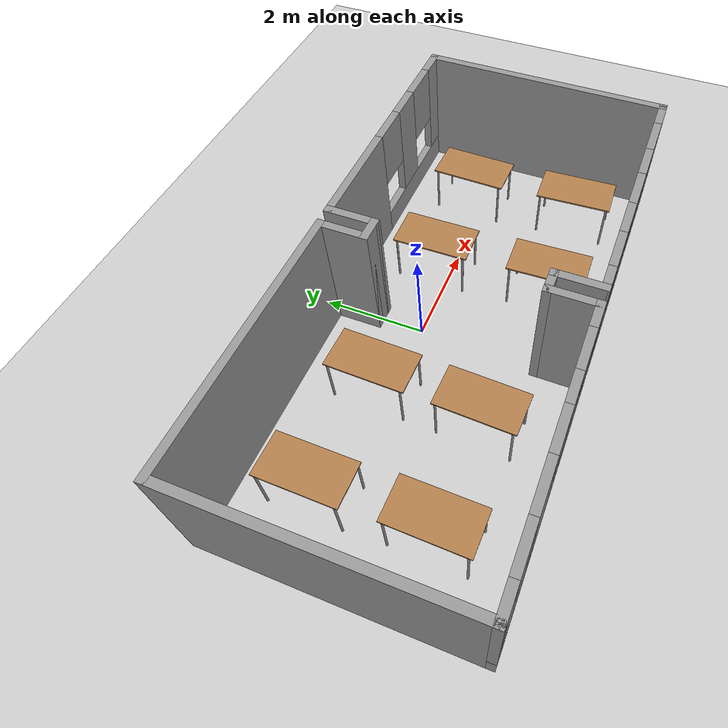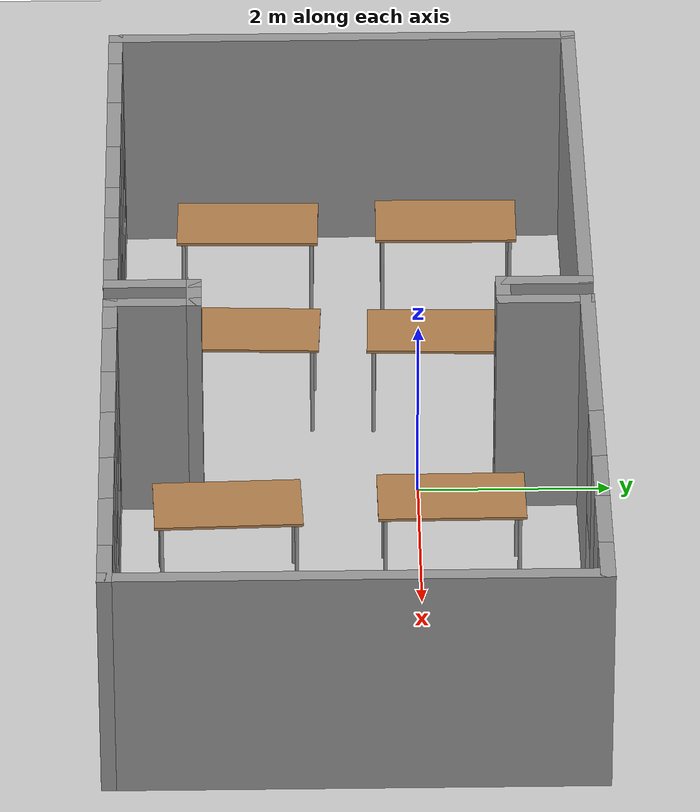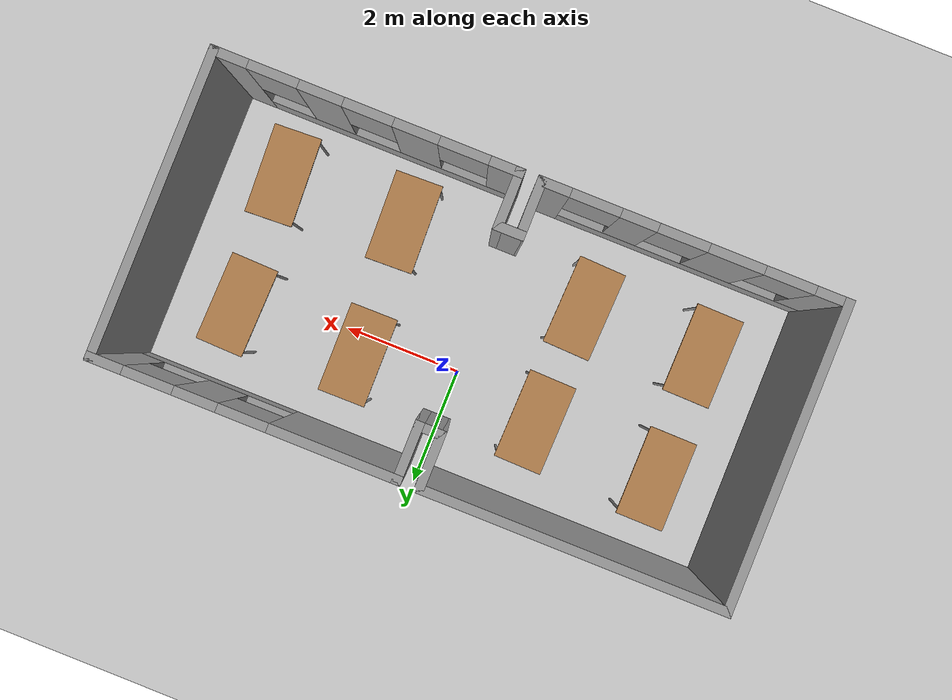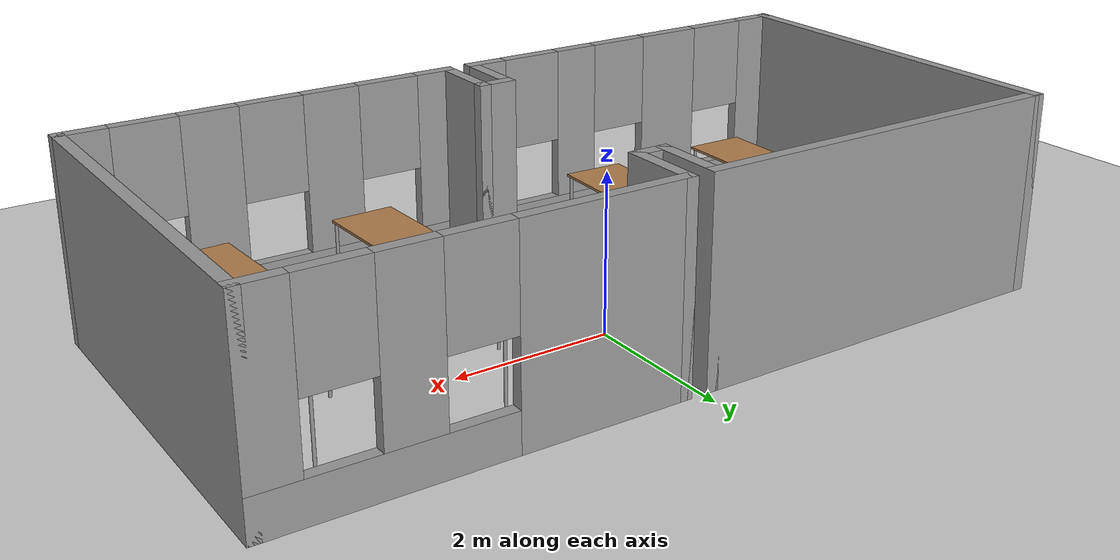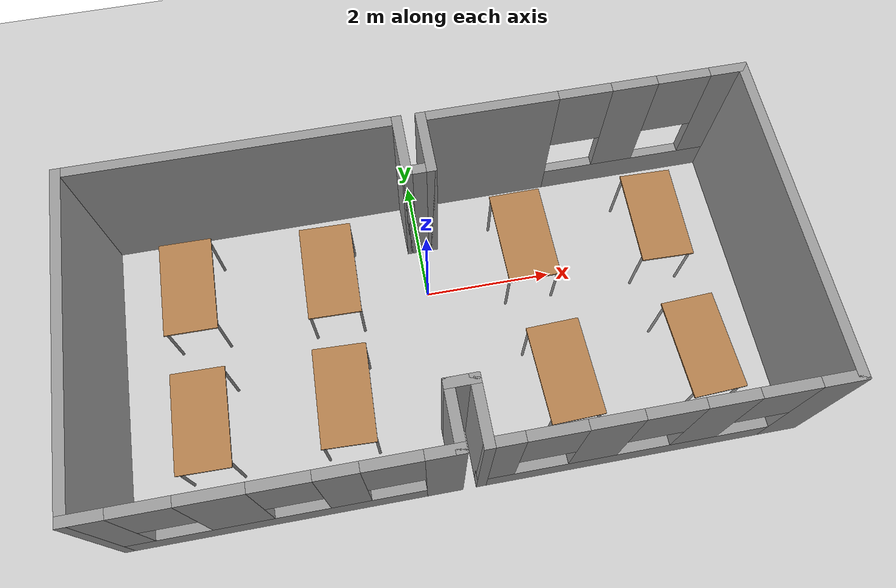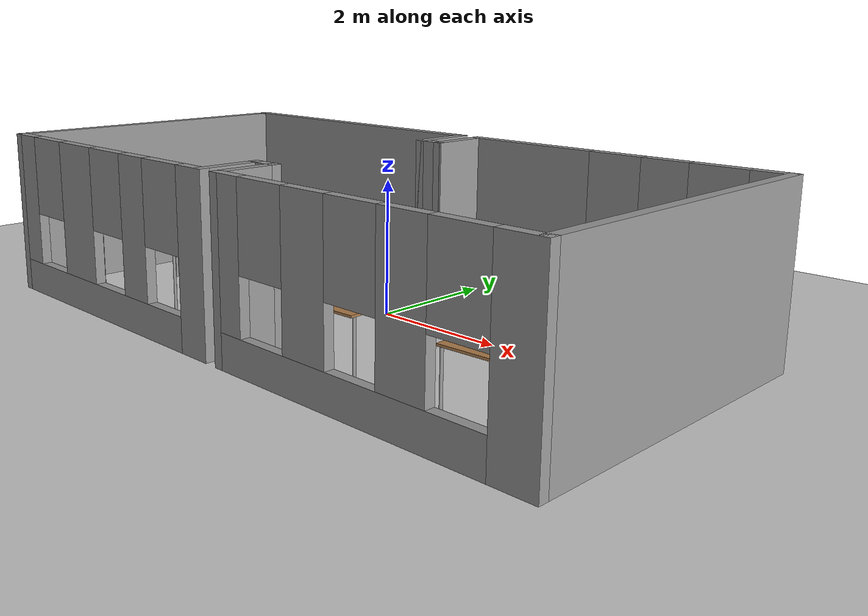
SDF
<sdf version="1.7">
 <world name="default">
  <light name="sun" type="directional">
   <pose>0 0 10 0 -0 0</pose>
   <diffuse>0.8 0.8 0.8 1</diffuse>
   <specular>0.2 0.2 0.2 1</specular>
   <attenuation>
    <range>1000</range>
    <constant>0.9</constant>
    <linear>0.01</linear>
    <quadratic>0.001</quadratic>
   </attenuation>
   <direction>-0.5 0.1 -0.9</direction>
   <spot><inner_angle>0</inner_angle><outer_angle>0</outer_angle><falloff>0</falloff></spot>
  </light>
  <model name="ground_plane">
   <static>1</static>
   <link name="link">
    <collision name="collision">
     <geometry><plane><normal>0 0 1</normal><size>100 100</size></plane></geometry>
     <surface>
      <contact><collide_bitmask>65535</collide_bitmask></contact>
      <friction><ode><mu>100</mu><mu2>50</mu2></ode></friction>
     </surface>
    </collision>
    <visual name="visual">
     <cast_shadows>0</cast_shadows>
     <geometry><plane><normal>0 0 1</normal><size>100 100</size></plane></geometry>
     <material>
      <script><uri>file://media/materials/scripts/gazebo.material</uri><name>Gazebo/Grey</name></script>
     </material>
    </visual>
   </link>
  </model>
  <gravity>0 0 -9.8</gravity>
  <magnetic_field>6e-06 2.3e-05 -4.2e-05</magnetic_field>
  <atmosphere type="adiabatic"/>
  <physics type="ode">
   <max_step_size>0.001</max_step_size>
   <real_time_factor>1</real_time_factor>
   <real_time_update_rate>1000</real_time_update_rate>
  </physics>
  <scene><ambient>0.4 0.4 0.4 1</ambient><background>0.7 0.7 0.7 1</background><shadows>1</shadows></scene>
  <spherical_coordinates>
   <surface_model>EARTH_WGS84</surface_model>
   <latitude_deg>0</latitude_deg>
   <longitude_deg>0</longitude_deg>
   <elevation>0</elevation>
   <heading_deg>0</heading_deg>
  </spherical_coordinates>
  <model name="eds10">
   <pose>0.049415 0.005387 0 0 -0 0</pose>
   <link name="Wall_0">
    <collision name="Wall_0_Collision">
     <geometry><box><size>5 0.15 2.5</size></box></geometry>
     <pose>0 0 1.25 0 -0 0</pose>
    </collision>
    <visual name="Wall_0_Visual">
     <pose>0 0 1.25 0 -0 0</pose>
     <geometry><box><size>5 0.15 2.5</size></box></geometry>
     <material>
      <script><uri>file://media/materials/scripts/gazebo.material</uri><name>Gazebo/Grey</name></script>
      <ambient>1 1 1 1</ambient>
     </material>
     <meta><layer>0</layer></meta>
    </visual>
    <pose>-2.6 1.7075 0 0 -0 0</pose>
   </link>
   <link name="Wall_1">
    <collision name="Wall_1_Collision">
     <geometry><box><size>1 0.15 2.5</size></box></geometry>
     <pose>0 0 1.25 0 -0 0</pose>
    </collision>
    <visual name="Wall_1_Visual">
     <pose>0 0 1.25 0 -0 0</pose>
     <geometry><box><size>1 0.15 2.5</size></box></geometry>
     <material>
      <script><uri>file://media/materials/scripts/gazebo.material</uri><name>Gazebo/Grey</name></script>
      <ambient>1 1 1 1</ambient>
     </material>
     <meta><layer>0</layer></meta>
    </visual>
    <pose>-0.175 1.2825 0 0 -0 -1.5708</pose>
   </link>
   <link name="Wall_10">
    <collision name="Wall_10_Collision">
     <geometry><box><size>1 0.15 2.5</size></box></geometry>
     <pose>0 0 1.25 0 -0 0</pose>
    </collision>
    <visual name="Wall_10_Visual">
     <pose>0 0 1.25 0 -0 0</pose>
     <geometry><box><size>1 0.15 2.5</size></box></geometry>
     <material>
      <script><uri>file://media/materials/scripts/gazebo.material</uri><name>Gazebo/Grey</name></script>
      <ambient>1 1 1 1</ambient>
     </material>
     <meta><layer>0</layer></meta>
    </visual>
    <pose>-0.175 -2.7175 0 0 -0 -1.5708</pose>
   </link>
   <link name="Wall_11">
    <pose>-2.6 -3.1425 0 0 -0 3.14159</pose>
    <visual name="Wall_11_Visual_0">
     <pose>-2.23182 0 1.25 0 -0 0</pose>
     <geometry><box><size>0.536358 0.15 2.5</size></box></geometry>
     <material>
      <script><uri>file://media/materials/scripts/gazebo.material</uri><name>Gazebo/Grey</name></script>
      <ambient>1 1 1 1</ambient>
     </material>
     <meta><layer>0</layer></meta>
    </visual>
    <collision name="Wall_11_Collision_0">
     <geometry><box><size>0.536358 0.15 2.5</size></box></geometry>
     <pose>-2.23182 0 1.25 0 -0 0</pose>
    </collision>
    <visual name="Wall_11_Visual_1">
     <pose>0.268179 0 0.25 0 -0 0</pose>
     <geometry><box><size>4.46364 0.15 0.5</size></box></geometry>
     <material>
      <script><uri>file://media/materials/scripts/gazebo.material</uri><name>Gazebo/Grey</name></script>
      <ambient>1 1 1 1</ambient>
     </material>
     <meta><layer>0</layer></meta>
    </visual>
    <collision name="Wall_11_Collision_1">
     <geometry><box><size>4.46364 0.15 0.5</size></box></geometry>
     <pose>0.268179 0 0.25 0 -0 0</pose>
    </collision>
    <visual name="Wall_11_Visual_2">
     <pose>-0.869724 0 1.5 0 -0 0</pose>
     <geometry><box><size>0.587836 0.15 2</size></box></geometry>
     <material>
      <script><uri>file://media/materials/scripts/gazebo.material</uri><name>Gazebo/Grey</name></script>
      <ambient>1 1 1 1</ambient>
     </material>
     <meta><layer>0</layer></meta>
    </visual>
    <collision name="Wall_11_Collision_2">
     <geometry><box><size>0.587836 0.15 2</size></box></geometry>
     <pose>-0.869724 0 1.5 0 -0 0</pose>
    </collision>
    <visual name="Wall_11_Visual_3">
     <pose>0.66557 0 1.5 0 -0 0</pose>
     <geometry><box><size>0.882752 0.15 2</size></box></geometry>
     <material>
      <script><uri>file://media/materials/scripts/gazebo.material</uri><name>Gazebo/Grey</name></script>
      <ambient>1 1 1 1</ambient>
     </material>
     <meta><layer>0</layer></meta>
    </visual>
    <collision name="Wall_11_Collision_3">
     <geometry><box><size>0.882752 0.15 2</size></box></geometry>
     <pose>0.66557 0 1.5 0 -0 0</pose>
    </collision>
    <visual name="Wall_11_Visual_4">
     <pose>2.20347 0 1.5 0 -0 0</pose>
     <geometry><box><size>0.593054 0.15 2</size></box></geometry>
     <material>
      <script><uri>file://media/materials/scripts/gazebo.material</uri><name>Gazebo/Grey</name></script>
      <ambient>1 1 1 1</ambient>
     </material>
     <meta><layer>0</layer></meta>
    </visual>
    <collision name="Wall_11_Collision_4">
     <geometry><box><size>0.593054 0.15 2</size></box></geometry>
     <pose>2.20347 0 1.5 0 -0 0</pose>
    </collision>
    <visual name="Wall_11_Visual_5">
     <pose>-1.56364 0 1.9 0 -0 0</pose>
     <geometry><box><size>0.8 0.15 1.2</size></box></geometry>
     <material>
      <script><uri>file://media/materials/scripts/gazebo.material</uri><name>Gazebo/Grey</name></script>
      <ambient>1 1 1 1</ambient>
     </material>
     <meta><layer>0</layer></meta>
    </visual>
    <collision name="Wall_11_Collision_5">
     <geometry><box><size>0.8 0.15 1.2</size></box></geometry>
     <pose>-1.56364 0 1.9 0 -0 0</pose>
    </collision>
    <visual name="Wall_11_Visual_6">
     <pose>-0.175806 0 1.9 0 -0 0</pose>
     <geometry><box><size>0.8 0.15 1.2</size></box></geometry>
     <material>
      <script><uri>file://media/materials/scripts/gazebo.material</uri><name>Gazebo/Grey</name></script>
      <ambient>1 1 1 1</ambient>
     </material>
     <meta><layer>0</layer></meta>
    </visual>
    <collision name="Wall_11_Collision_6">
     <geometry><box><size>0.8 0.15 1.2</size></box></geometry>
     <pose>-0.175806 0 1.9 0 -0 0</pose>
    </collision>
    <visual name="Wall_11_Visual_7">
     <pose>1.50695 0 1.9 0 -0 0</pose>
     <geometry><box><size>0.8 0.15 1.2</size></box></geometry>
     <material>
      <script><uri>file://media/materials/scripts/gazebo.material</uri><name>Gazebo/Grey</name></script>
      <ambient>1 1 1 1</ambient>
     </material>
     <meta><layer>0</layer></meta>
    </visual>
    <collision name="Wall_11_Collision_7">
     <geometry><box><size>0.8 0.15 1.2</size></box></geometry>
     <pose>1.50695 0 1.9 0 -0 0</pose>
    </collision>
   </link>
   <link name="Wall_12">
    <collision name="Wall_12_Collision">
     <geometry><box><size>5 0.15 2.5</size></box></geometry>
     <pose>0 0 1.25 0 -0 0</pose>
    </collision>
    <visual name="Wall_12_Visual">
     <pose>0 0 1.25 0 -0 0</pose>
     <geometry><box><size>5 0.15 2.5</size></box></geometry>
     <material>
      <script><uri>file://media/materials/scripts/gazebo.material</uri><name>Gazebo/Grey</name></script>
      <ambient>1 1 1 1</ambient>
     </material>
     <meta><layer>0</layer></meta>
    </visual>
    <pose>-5.025 -0.7175 0 0 -0 1.5708</pose>
   </link>
   <link name="Wall_2">
    <collision name="Wall_2_Collision">
     <geometry><box><size>0.5 0.15 2.5</size></box></geometry>
     <pose>0 0 1.25 0 -0 0</pose>
    </collision>
    <visual name="Wall_2_Visual">
     <pose>0 0 1.25 0 -0 0</pose>
     <geometry><box><size>0.5 0.15 2.5</size></box></geometry>
     <material>
      <script><uri>file://media/materials/scripts/gazebo.material</uri><name>Gazebo/Grey</name></script>
      <ambient>1 1 1 1</ambient>
     </material>
     <meta><layer>0</layer></meta>
    </visual>
    <pose>0 0.8575 0 0 -0 0</pose>
   </link>
   <link name="Wall_3">
    <collision name="Wall_3_Collision">
     <geometry><box><size>1 0.15 2.5</size></box></geometry>
     <pose>0 0 1.25 0 -0 0</pose>
    </collision>
    <visual name="Wall_3_Visual">
     <pose>0 0 1.25 0 -0 0</pose>
     <geometry><box><size>1 0.15 2.5</size></box></geometry>
     <material>
      <script><uri>file://media/materials/scripts/gazebo.material</uri><name>Gazebo/Grey</name></script>
      <ambient>1 1 1 1</ambient>
     </material>
     <meta><layer>0</layer></meta>
    </visual>
    <pose>0.175 1.2825 0 0 -0 1.5708</pose>
   </link>
   <link name="Wall_4">
    <pose>2.6 1.7075 0 0 -0 0</pose>
    <visual name="Wall_4_Visual_0">
     <pose>-1.43797 0 1.25 0 -0 0</pose>
     <geometry><box><size>2.12406 0.15 2.5</size></box></geometry>
     <material>
      <script><uri>file://media/materials/scripts/gazebo.material</uri><name>Gazebo/Grey</name></script>
      <ambient>1 1 1 1</ambient>
     </material>
     <meta><layer>0</layer></meta>
    </visual>
    <collision name="Wall_4_Collision_0">
     <geometry><box><size>2.12406 0.15 2.5</size></box></geometry>
     <pose>-1.43797 0 1.25 0 -0 0</pose>
    </collision>
    <visual name="Wall_4_Visual_1">
     <pose>1.06203 0 0.25 0 -0 0</pose>
     <geometry><box><size>2.87594 0.15 0.5</size></box></geometry>
     <material>
      <script><uri>file://media/materials/scripts/gazebo.material</uri><name>Gazebo/Grey</name></script>
      <ambient>1 1 1 1</ambient>
     </material>
     <meta><layer>0</layer></meta>
    </visual>
    <collision name="Wall_4_Collision_1">
     <geometry><box><size>2.87594 0.15 0.5</size></box></geometry>
     <pose>1.06203 0 0.25 0 -0 0</pose>
    </collision>
    <visual name="Wall_4_Visual_2">
     <pose>0.770023 0 1.5 0 -0 0</pose>
     <geometry><box><size>0.691924 0.15 2</size></box></geometry>
     <material>
      <script><uri>file://media/materials/scripts/gazebo.material</uri><name>Gazebo/Grey</name></script>
      <ambient>1 1 1 1</ambient>
     </material>
     <meta><layer>0</layer></meta>
    </visual>
    <collision name="Wall_4_Collision_2">
     <geometry><box><size>0.691924 0.15 2</size></box></geometry>
     <pose>0.770023 0 1.5 0 -0 0</pose>
    </collision>
    <visual name="Wall_4_Visual_3">
     <pose>2.20799 0 1.5 0 -0 0</pose>
     <geometry><box><size>0.584015 0.15 2</size></box></geometry>
     <material>
      <script><uri>file://media/materials/scripts/gazebo.material</uri><name>Gazebo/Grey</name></script>
      <ambient>1 1 1 1</ambient>
     </material>
     <meta><layer>0</layer></meta>
    </visual>
    <collision name="Wall_4_Collision_3">
     <geometry><box><size>0.584015 0.15 2</size></box></geometry>
     <pose>2.20799 0 1.5 0 -0 0</pose>
    </collision>
    <visual name="Wall_4_Visual_4">
     <pose>0.024061 0 1.9 0 -0 0</pose>
     <geometry><box><size>0.8 0.15 1.2</size></box></geometry>
     <material>
      <script><uri>file://media/materials/scripts/gazebo.material</uri><name>Gazebo/Grey</name></script>
      <ambient>1 1 1 1</ambient>
     </material>
     <meta><layer>0</layer></meta>
    </visual>
    <collision name="Wall_4_Collision_4">
     <geometry><box><size>0.8 0.15 1.2</size></box></geometry>
     <pose>0.024061 0 1.9 0 -0 0</pose>
    </collision>
    <visual name="Wall_4_Visual_5">
     <pose>1.51598 0 1.9 0 -0 0</pose>
     <geometry><box><size>0.8 0.15 1.2</size></box></geometry>
     <material>
      <script><uri>file://media/materials/scripts/gazebo.material</uri><name>Gazebo/Grey</name></script>
      <ambient>1 1 1 1</ambient>
     </material>
     <meta><layer>0</layer></meta>
    </visual>
    <collision name="Wall_4_Collision_5">
     <geometry><box><size>0.8 0.15 1.2</size></box></geometry>
     <pose>1.51598 0 1.9 0 -0 0</pose>
    </collision>
   </link>
   <link name="Wall_6">
    <collision name="Wall_6_Collision">
     <geometry><box><size>5 0.15 2.5</size></box></geometry>
     <pose>0 0 1.25 0 -0 0</pose>
    </collision>
    <visual name="Wall_6_Visual">
     <pose>0 0 1.25 0 -0 0</pose>
     <geometry><box><size>5 0.15 2.5</size></box></geometry>
     <material>
      <script><uri>file://media/materials/scripts/gazebo.material</uri><name>Gazebo/Grey</name></script>
      <ambient>1 1 1 1</ambient>
     </material>
     <meta><layer>0</layer></meta>
    </visual>
    <pose>5.025 -0.7175 0 0 -0 -1.5708</pose>
   </link>
   <link name="Wall_7">
    <pose>2.6 -3.1425 0 0 -0 3.14159</pose>
    <visual name="Wall_7_Visual_0">
     <pose>-2.19064 0 1.25 0 -0 0</pose>
     <geometry><box><size>0.618711 0.15 2.5</size></box></geometry>
     <material>
      <script><uri>file://media/materials/scripts/gazebo.material</uri><name>Gazebo/Grey</name></script>
      <ambient>1 1 1 1</ambient>
     </material>
     <meta><layer>0</layer></meta>
    </visual>
    <collision name="Wall_7_Collision_0">
     <geometry><box><size>0.618711 0.15 2.5</size></box></geometry>
     <pose>-2.19064 0 1.25 0 -0 0</pose>
    </collision>
    <visual name="Wall_7_Visual_1">
     <pose>0.309356 0 0.25 0 -0 0</pose>
     <geometry><box><size>4.38129 0.15 0.5</size></box></geometry>
     <material>
      <script><uri>file://media/materials/scripts/gazebo.material</uri><name>Gazebo/Grey</name></script>
      <ambient>1 1 1 1</ambient>
     </material>
     <meta><layer>0</layer></meta>
    </visual>
    <collision name="Wall_7_Collision_1">
     <geometry><box><size>4.38129 0.15 0.5</size></box></geometry>
     <pose>0.309356 0 0.25 0 -0 0</pose>
    </collision>
    <visual name="Wall_7_Visual_2">
     <pose>-0.726653 0 1.5 0 -0 0</pose>
     <geometry><box><size>0.709272 0.15 2</size></box></geometry>
     <material>
      <script><uri>file://media/materials/scripts/gazebo.material</uri><name>Gazebo/Grey</name></script>
      <ambient>1 1 1 1</ambient>
     </material>
     <meta><layer>0</layer></meta>
    </visual>
    <collision name="Wall_7_Collision_2">
     <geometry><box><size>0.709272 0.15 2</size></box></geometry>
     <pose>-0.726653 0 1.5 0 -0 0</pose>
    </collision>
    <visual name="Wall_7_Visual_3">
     <pose>0.791293 0 1.5 0 -0 0</pose>
     <geometry><box><size>0.72662 0.15 2</size></box></geometry>
     <material>
      <script><uri>file://media/materials/scripts/gazebo.material</uri><name>Gazebo/Grey</name></script>
      <ambient>1 1 1 1</ambient>
     </material>
     <meta><layer>0</layer></meta>
    </visual>
    <collision name="Wall_7_Collision_3">
     <geometry><box><size>0.72662 0.15 2</size></box></geometry>
     <pose>0.791293 0 1.5 0 -0 0</pose>
    </collision>
    <visual name="Wall_7_Visual_4">
     <pose>2.2273 0 1.5 0 -0 0</pose>
     <geometry><box><size>0.545397 0.15 2</size></box></geometry>
     <material>
      <script><uri>file://media/materials/scripts/gazebo.material</uri><name>Gazebo/Grey</name></script>
      <ambient>1 1 1 1</ambient>
     </material>
     <meta><layer>0</layer></meta>
    </visual>
    <collision name="Wall_7_Collision_4">
     <geometry><box><size>0.545397 0.15 2</size></box></geometry>
     <pose>2.2273 0 1.5 0 -0 0</pose>
    </collision>
    <visual name="Wall_7_Visual_5">
     <pose>-1.48129 0 1.9 0 -0 0</pose>
     <geometry><box><size>0.8 0.15 1.2</size></box></geometry>
     <material>
      <script><uri>file://media/materials/scripts/gazebo.material</uri><name>Gazebo/Grey</name></script>
      <ambient>1 1 1 1</ambient>
     </material>
     <meta><layer>0</layer></meta>
    </visual>
    <collision name="Wall_7_Collision_5">
     <geometry><box><size>0.8 0.15 1.2</size></box></geometry>
     <pose>-1.48129 0 1.9 0 -0 0</pose>
    </collision>
    <visual name="Wall_7_Visual_6">
     <pose>0.027983 0 1.9 0 -0 0</pose>
     <geometry><box><size>0.8 0.15 1.2</size></box></geometry>
     <material>
      <script><uri>file://media/materials/scripts/gazebo.material</uri><name>Gazebo/Grey</name></script>
      <ambient>1 1 1 1</ambient>
     </material>
     <meta><layer>0</layer></meta>
    </visual>
    <collision name="Wall_7_Collision_6">
     <geometry><box><size>0.8 0.15 1.2</size></box></geometry>
     <pose>0.027983 0 1.9 0 -0 0</pose>
    </collision>
    <visual name="Wall_7_Visual_7">
     <pose>1.5546 0 1.9 0 -0 0</pose>
     <geometry><box><size>0.8 0.15 1.2</size></box></geometry>
     <material>
      <script><uri>file://media/materials/scripts/gazebo.material</uri><name>Gazebo/Grey</name></script>
      <ambient>1 1 1 1</ambient>
     </material>
     <meta><layer>0</layer></meta>
    </visual>
    <collision name="Wall_7_Collision_7">
     <geometry><box><size>0.8 0.15 1.2</size></box></geometry>
     <pose>1.5546 0 1.9 0 -0 0</pose>
    </collision>
   </link>
   <link name="Wall_8">
    <collision name="Wall_8_Collision">
     <geometry><box><size>1 0.15 2.5</size></box></geometry>
     <pose>0 0 1.25 0 -0 0</pose>
    </collision>
    <visual name="Wall_8_Visual">
     <pose>0 0 1.25 0 -0 0</pose>
     <geometry><box><size>1 0.15 2.5</size></box></geometry>
     <material>
      <script><uri>file://media/materials/scripts/gazebo.material</uri><name>Gazebo/Grey</name></script>
      <ambient>1 1 1 1</ambient>
     </material>
     <meta><layer>0</layer></meta>
    </visual>
    <pose>0.175 -2.7175 0 0 -0 1.5708</pose>
   </link>
   <link name="Wall_9">
    <collision name="Wall_9_Collision">
     <geometry><box><size>0.5 0.15 2.5</size></box></geometry>
     <pose>0 0 1.25 0 -0 0</pose>
    </collision>
    <visual name="Wall_9_Visual">
     <pose>0 0 1.25 0 -0 0</pose>
     <geometry><box><size>0.5 0.15 2.5</size></box></geometry>
     <material>
      <script><uri>file://media/materials/scripts/gazebo.material</uri><name>Gazebo/Grey</name></script>
      <ambient>1 1 1 1</ambient>
     </material>
     <meta><layer>0</layer></meta>
    </visual>
    <pose>0 -2.2925 0 0 -0 3.14159</pose>
   </link>
   <static>1</static>
  </model>
  <model name="table">
   <static>1</static>
   <link name="link">
    <collision name="surface">
     <pose>0 0 1 0 -0 0</pose>
     <geometry><box><size>1.5 0.8 0.03</size></box></geometry>
     <surface><friction><ode><mu>0.6</mu><mu2>0.6</mu2></ode></friction></surface>
    </collision>
    <visual name="visual1">
     <pose>0 0 1 0 -0 0</pose>
     <geometry><box><size>1.5 0.8 0.03</size></box></geometry>
     <material>
      <script><uri>file://media/materials/scripts/gazebo.material</uri><name>Gazebo/Wood</name></script>
     </material>
    </visual>
    <collision name="front_left_leg">
     <pose>0.68 0.38 0.5 0 -0 0</pose>
     <geometry><cylinder><radius>0.02</radius><length>1</length></cylinder></geometry>
    </collision>
    <visual name="front_left_leg">
     <pose>0.68 0.38 0.5 0 -0 0</pose>
     <geometry><cylinder><radius>0.02</radius><length>1</length></cylinder></geometry>
     <material>
      <script><uri>file://media/materials/scripts/gazebo.material</uri><name>Gazebo/Grey</name></script>
     </material>
    </visual>
    <collision name="front_right_leg">
     <pose>0.68 -0.38 0.5 0 -0 0</pose>
     <geometry><cylinder><radius>0.02</radius><length>1</length></cylinder></geometry>
    </collision>
    <visual name="front_right_leg">
     <pose>0.68 -0.38 0.5 0 -0 0</pose>
     <geometry><cylinder><radius>0.02</radius><length>1</length></cylinder></geometry>
     <material>
      <script><uri>file://media/materials/scripts/gazebo.material</uri><name>Gazebo/Grey</name></script>
     </material>
    </visual>
    <collision name="back_right_leg">
     <pose>-0.68 -0.38 0.5 0 -0 0</pose>
     <geometry><cylinder><radius>0.02</radius><length>1</length></cylinder></geometry>
    </collision>
    <visual name="back_right_leg">
     <pose>-0.68 -0.38 0.5 0 -0 0</pose>
     <geometry><cylinder><radius>0.02</radius><length>1</length></cylinder></geometry>
     <material>
      <script><uri>file://media/materials/scripts/gazebo.material</uri><name>Gazebo/Grey</name></script>
     </material>
    </visual>
    <collision name="back_left_leg">
     <pose>-0.68 0.38 0.5 0 -0 0</pose>
     <geometry><cylinder><radius>0.02</radius><length>1</length></cylinder></geometry>
    </collision>
    <visual name="back_left_leg">
     <pose>-0.68 0.38 0.5 0 -0 0</pose>
     <geometry><cylinder><radius>0.02</radius><length>1</length></cylinder></geometry>
     <material>
      <script><uri>file://media/materials/scripts/gazebo.material</uri><name>Gazebo/Grey</name></script>
     </material>
    </visual>
   </link>
   <pose>-1.47283 0.25139 0 0 0 -1.59335</pose>
  </model>
  <model name="table_0">
   <static>1</static>
   <link name="link">
    <collision name="surface">
     <pose>0 0 1 0 -0 0</pose>
     <geometry><box><size>1.5 0.8 0.03</size></box></geometry>
     <surface><friction><ode><mu>0.6</mu><mu2>0.6</mu2></ode></friction></surface>
    </collision>
    <visual name="visual1">
     <pose>0 0 1 0 -0 0</pose>
     <geometry><box><size>1.5 0.8 0.03</size></box></geometry>
     <material>
      <script><uri>file://media/materials/scripts/gazebo.material</uri><name>Gazebo/Wood</name></script>
     </material>
    </visual>
    <collision name="front_left_leg">
     <pose>0.68 0.38 0.5 0 -0 0</pose>
     <geometry><cylinder><radius>0.02</radius><length>1</length></cylinder></geometry>
    </collision>
    <visual name="front_left_leg">
     <pose>0.68 0.38 0.5 0 -0 0</pose>
     <geometry><cylinder><radius>0.02</radius><length>1</length></cylinder></geometry>
     <material>
      <script><uri>file://media/materials/scripts/gazebo.material</uri><name>Gazebo/Grey</name></script>
     </material>
    </visual>
    <collision name="front_right_leg">
     <pose>0.68 -0.38 0.5 0 -0 0</pose>
     <geometry><cylinder><radius>0.02</radius><length>1</length></cylinder></geometry>
    </collision>
    <visual name="front_right_leg">
     <pose>0.68 -0.38 0.5 0 -0 0</pose>
     <geometry><cylinder><radius>0.02</radius><length>1</length></cylinder></geometry>
     <material>
      <script><uri>file://media/materials/scripts/gazebo.material</uri><name>Gazebo/Grey</name></script>
     </material>
    </visual>
    <collision name="back_right_leg">
     <pose>-0.68 -0.38 0.5 0 -0 0</pose>
     <geometry><cylinder><radius>0.02</radius><length>1</length></cylinder></geometry>
    </collision>
    <visual name="back_right_leg">
     <pose>-0.68 -0.38 0.5 0 -0 0</pose>
     <geometry><cylinder><radius>0.02</radius><length>1</length></cylinder></geometry>
     <material>
      <script><uri>file://media/materials/scripts/gazebo.material</uri><name>Gazebo/Grey</name></script>
     </material>
    </visual>
    <collision name="back_left_leg">
     <pose>-0.68 0.38 0.5 0 -0 0</pose>
     <geometry><cylinder><radius>0.02</radius><length>1</length></cylinder></geometry>
    </collision>
    <visual name="back_left_leg">
     <pose>-0.68 0.38 0.5 0 -0 0</pose>
     <geometry><cylinder><radius>0.02</radius><length>1</length></cylinder></geometry>
     <material>
      <script><uri>file://media/materials/scripts/gazebo.material</uri><name>Gazebo/Grey</name></script>
     </material>
    </visual>
   </link>
   <pose>-1.5334 -1.74429 0 0 -0 1.5339</pose>
  </model>
  <model name="table_1">
   <static>1</static>
   <link name="link">
    <collision name="surface">
     <pose>0 0 1 0 -0 0</pose>
     <geometry><box><size>1.5 0.8 0.03</size></box></geometry>
     <surface><friction><ode><mu>0.6</mu><mu2>0.6</mu2></ode></friction></surface>
    </collision>
    <visual name="visual1">
     <pose>0 0 1 0 -0 0</pose>
     <geometry><box><size>1.5 0.8 0.03</size></box></geometry>
     <material>
      <script><uri>file://media/materials/scripts/gazebo.material</uri><name>Gazebo/Wood</name></script>
     </material>
    </visual>
    <collision name="front_left_leg">
     <pose>0.68 0.38 0.5 0 -0 0</pose>
     <geometry><cylinder><radius>0.02</radius><length>1</length></cylinder></geometry>
    </collision>
    <visual name="front_left_leg">
     <pose>0.68 0.38 0.5 0 -0 0</pose>
     <geometry><cylinder><radius>0.02</radius><length>1</length></cylinder></geometry>
     <material>
      <script><uri>file://media/materials/scripts/gazebo.material</uri><name>Gazebo/Grey</name></script>
     </material>
    </visual>
    <collision name="front_right_leg">
     <pose>0.68 -0.38 0.5 0 -0 0</pose>
     <geometry><cylinder><radius>0.02</radius><length>1</length></cylinder></geometry>
    </collision>
    <visual name="front_right_leg">
     <pose>0.68 -0.38 0.5 0 -0 0</pose>
     <geometry><cylinder><radius>0.02</radius><length>1</length></cylinder></geometry>
     <material>
      <script><uri>file://media/materials/scripts/gazebo.material</uri><name>Gazebo/Grey</name></script>
     </material>
    </visual>
    <collision name="back_right_leg">
     <pose>-0.68 -0.38 0.5 0 -0 0</pose>
     <geometry><cylinder><radius>0.02</radius><length>1</length></cylinder></geometry>
    </collision>
    <visual name="back_right_leg">
     <pose>-0.68 -0.38 0.5 0 -0 0</pose>
     <geometry><cylinder><radius>0.02</radius><length>1</length></cylinder></geometry>
     <material>
      <script><uri>file://media/materials/scripts/gazebo.material</uri><name>Gazebo/Grey</name></script>
     </material>
    </visual>
    <collision name="back_left_leg">
     <pose>-0.68 0.38 0.5 0 -0 0</pose>
     <geometry><cylinder><radius>0.02</radius><length>1</length></cylinder></geometry>
    </collision>
    <visual name="back_left_leg">
     <pose>-0.68 0.38 0.5 0 -0 0</pose>
     <geometry><cylinder><radius>0.02</radius><length>1</length></cylinder></geometry>
     <material>
      <script><uri>file://media/materials/scripts/gazebo.material</uri><name>Gazebo/Grey</name></script>
     </material>
    </visual>
   </link>
   <pose>-3.62171 0.37447 0 0 0 -1.58098</pose>
  </model>
  <model name="table_2">
   <static>1</static>
   <link name="link">
    <collision name="surface">
     <pose>0 0 1 0 -0 0</pose>
     <geometry><box><size>1.5 0.8 0.03</size></box></geometry>
     <surface><friction><ode><mu>0.6</mu><mu2>0.6</mu2></ode></friction></surface>
    </collision>
    <visual name="visual1">
     <pose>0 0 1 0 -0 0</pose>
     <geometry><box><size>1.5 0.8 0.03</size></box></geometry>
     <material>
      <script><uri>file://media/materials/scripts/gazebo.material</uri><name>Gazebo/Wood</name></script>
     </material>
    </visual>
    <collision name="front_left_leg">
     <pose>0.68 0.38 0.5 0 -0 0</pose>
     <geometry><cylinder><radius>0.02</radius><length>1</length></cylinder></geometry>
    </collision>
    <visual name="front_left_leg">
     <pose>0.68 0.38 0.5 0 -0 0</pose>
     <geometry><cylinder><radius>0.02</radius><length>1</length></cylinder></geometry>
     <material>
      <script><uri>file://media/materials/scripts/gazebo.material</uri><name>Gazebo/Grey</name></script>
     </material>
    </visual>
    <collision name="front_right_leg">
     <pose>0.68 -0.38 0.5 0 -0 0</pose>
     <geometry><cylinder><radius>0.02</radius><length>1</length></cylinder></geometry>
    </collision>
    <visual name="front_right_leg">
     <pose>0.68 -0.38 0.5 0 -0 0</pose>
     <geometry><cylinder><radius>0.02</radius><length>1</length></cylinder></geometry>
     <material>
      <script><uri>file://media/materials/scripts/gazebo.material</uri><name>Gazebo/Grey</name></script>
     </material>
    </visual>
    <collision name="back_right_leg">
     <pose>-0.68 -0.38 0.5 0 -0 0</pose>
     <geometry><cylinder><radius>0.02</radius><length>1</length></cylinder></geometry>
    </collision>
    <visual name="back_right_leg">
     <pose>-0.68 -0.38 0.5 0 -0 0</pose>
     <geometry><cylinder><radius>0.02</radius><length>1</length></cylinder></geometry>
     <material>
      <script><uri>file://media/materials/scripts/gazebo.material</uri><name>Gazebo/Grey</name></script>
     </material>
    </visual>
    <collision name="back_left_leg">
     <pose>-0.68 0.38 0.5 0 -0 0</pose>
     <geometry><cylinder><radius>0.02</radius><length>1</length></cylinder></geometry>
    </collision>
    <visual name="back_left_leg">
     <pose>-0.68 0.38 0.5 0 -0 0</pose>
     <geometry><cylinder><radius>0.02</radius><length>1</length></cylinder></geometry>
     <material>
      <script><uri>file://media/materials/scripts/gazebo.material</uri><name>Gazebo/Grey</name></script>
     </material>
    </visual>
   </link>
   <pose>-3.59406 -1.74039 0 0 0 -1.58706</pose>
  </model>
  <model name="table_3">
   <static>1</static>
   <link name="link">
    <collision name="surface">
     <pose>0 0 1 0 -0 0</pose>
     <geometry><box><size>1.5 0.8 0.03</size></box></geometry>
     <surface><friction><ode><mu>0.6</mu><mu2>0.6</mu2></ode></friction></surface>
    </collision>
    <visual name="visual1">
     <pose>0 0 1 0 -0 0</pose>
     <geometry><box><size>1.5 0.8 0.03</size></box></geometry>
     <material>
      <script><uri>file://media/materials/scripts/gazebo.material</uri><name>Gazebo/Wood</name></script>
     </material>
    </visual>
    <collision name="front_left_leg">
     <pose>0.68 0.38 0.5 0 -0 0</pose>
     <geometry><cylinder><radius>0.02</radius><length>1</length></cylinder></geometry>
    </collision>
    <visual name="front_left_leg">
     <pose>0.68 0.38 0.5 0 -0 0</pose>
     <geometry><cylinder><radius>0.02</radius><length>1</length></cylinder></geometry>
     <material>
      <script><uri>file://media/materials/scripts/gazebo.material</uri><name>Gazebo/Grey</name></script>
     </material>
    </visual>
    <collision name="front_right_leg">
     <pose>0.68 -0.38 0.5 0 -0 0</pose>
     <geometry><cylinder><radius>0.02</radius><length>1</length></cylinder></geometry>
    </collision>
    <visual name="front_right_leg">
     <pose>0.68 -0.38 0.5 0 -0 0</pose>
     <geometry><cylinder><radius>0.02</radius><length>1</length></cylinder></geometry>
     <material>
      <script><uri>file://media/materials/scripts/gazebo.material</uri><name>Gazebo/Grey</name></script>
     </material>
    </visual>
    <collision name="back_right_leg">
     <pose>-0.68 -0.38 0.5 0 -0 0</pose>
     <geometry><cylinder><radius>0.02</radius><length>1</length></cylinder></geometry>
    </collision>
    <visual name="back_right_leg">
     <pose>-0.68 -0.38 0.5 0 -0 0</pose>
     <geometry><cylinder><radius>0.02</radius><length>1</length></cylinder></geometry>
     <material>
      <script><uri>file://media/materials/scripts/gazebo.material</uri><name>Gazebo/Grey</name></script>
     </material>
    </visual>
    <collision name="back_left_leg">
     <pose>-0.68 0.38 0.5 0 -0 0</pose>
     <geometry><cylinder><radius>0.02</radius><length>1</length></cylinder></geometry>
    </collision>
    <visual name="back_left_leg">
     <pose>-0.68 0.38 0.5 0 -0 0</pose>
     <geometry><cylinder><radius>0.02</radius><length>1</length></cylinder></geometry>
     <material>
      <script><uri>file://media/materials/scripts/gazebo.material</uri><name>Gazebo/Grey</name></script>
     </material>
    </visual>
   </link>
   <pose>1.58497 0.304559 0 0 0 -1.56345</pose>
  </model>
  <model name="table_4">
   <static>1</static>
   <link name="link">
    <collision name="surface">
     <pose>0 0 1 0 -0 0</pose>
     <geometry><box><size>1.5 0.8 0.03</size></box></geometry>
     <surface><friction><ode><mu>0.6</mu><mu2>0.6</mu2></ode></friction></surface>
    </collision>
    <visual name="visual1">
     <pose>0 0 1 0 -0 0</pose>
     <geometry><box><size>1.5 0.8 0.03</size></box></geometry>
     <material>
      <script><uri>file://media/materials/scripts/gazebo.material</uri><name>Gazebo/Wood</name></script>
     </material>
    </visual>
    <collision name="front_left_leg">
     <pose>0.68 0.38 0.5 0 -0 0</pose>
     <geometry><cylinder><radius>0.02</radius><length>1</length></cylinder></geometry>
    </collision>
    <visual name="front_left_leg">
     <pose>0.68 0.38 0.5 0 -0 0</pose>
     <geometry><cylinder><radius>0.02</radius><length>1</length></cylinder></geometry>
     <material>
      <script><uri>file://media/materials/scripts/gazebo.material</uri><name>Gazebo/Grey</name></script>
     </material>
    </visual>
    <collision name="front_right_leg">
     <pose>0.68 -0.38 0.5 0 -0 0</pose>
     <geometry><cylinder><radius>0.02</radius><length>1</length></cylinder></geometry>
    </collision>
    <visual name="front_right_leg">
     <pose>0.68 -0.38 0.5 0 -0 0</pose>
     <geometry><cylinder><radius>0.02</radius><length>1</length></cylinder></geometry>
     <material>
      <script><uri>file://media/materials/scripts/gazebo.material</uri><name>Gazebo/Grey</name></script>
     </material>
    </visual>
    <collision name="back_right_leg">
     <pose>-0.68 -0.38 0.5 0 -0 0</pose>
     <geometry><cylinder><radius>0.02</radius><length>1</length></cylinder></geometry>
    </collision>
    <visual name="back_right_leg">
     <pose>-0.68 -0.38 0.5 0 -0 0</pose>
     <geometry><cylinder><radius>0.02</radius><length>1</length></cylinder></geometry>
     <material>
      <script><uri>file://media/materials/scripts/gazebo.material</uri><name>Gazebo/Grey</name></script>
     </material>
    </visual>
    <collision name="back_left_leg">
     <pose>-0.68 0.38 0.5 0 -0 0</pose>
     <geometry><cylinder><radius>0.02</radius><length>1</length></cylinder></geometry>
    </collision>
    <visual name="back_left_leg">
     <pose>-0.68 0.38 0.5 0 -0 0</pose>
     <geometry><cylinder><radius>0.02</radius><length>1</length></cylinder></geometry>
     <material>
      <script><uri>file://media/materials/scripts/gazebo.material</uri><name>Gazebo/Grey</name></script>
     </material>
    </visual>
   </link>
   <pose>3.69548 0.275958 0 0 0 -1.59699</pose>
  </model>
  <model name="table_5">
   <static>1</static>
   <link name="link">
    <collision name="surface">
     <pose>0 0 1 0 -0 0</pose>
     <geometry><box><size>1.5 0.8 0.03</size></box></geometry>
     <surface><friction><ode><mu>0.6</mu><mu2>0.6</mu2></ode></friction></surface>
    </collision>
    <visual name="visual1">
     <pose>0 0 1 0 -0 0</pose>
     <geometry><box><size>1.5 0.8 0.03</size></box></geometry>
     <material>
      <script><uri>file://media/materials/scripts/gazebo.material</uri><name>Gazebo/Wood</name></script>
     </material>
    </visual>
    <collision name="front_left_leg">
     <pose>0.68 0.38 0.5 0 -0 0</pose>
     <geometry><cylinder><radius>0.02</radius><length>1</length></cylinder></geometry>
    </collision>
    <visual name="front_left_leg">
     <pose>0.68 0.38 0.5 0 -0 0</pose>
     <geometry><cylinder><radius>0.02</radius><length>1</length></cylinder></geometry>
     <material>
      <script><uri>file://media/materials/scripts/gazebo.material</uri><name>Gazebo/Grey</name></script>
     </material>
    </visual>
    <collision name="front_right_leg">
     <pose>0.68 -0.38 0.5 0 -0 0</pose>
     <geometry><cylinder><radius>0.02</radius><length>1</length></cylinder></geometry>
    </collision>
    <visual name="front_right_leg">
     <pose>0.68 -0.38 0.5 0 -0 0</pose>
     <geometry><cylinder><radius>0.02</radius><length>1</length></cylinder></geometry>
     <material>
      <script><uri>file://media/materials/scripts/gazebo.material</uri><name>Gazebo/Grey</name></script>
     </material>
    </visual>
    <collision name="back_right_leg">
     <pose>-0.68 -0.38 0.5 0 -0 0</pose>
     <geometry><cylinder><radius>0.02</radius><length>1</length></cylinder></geometry>
    </collision>
    <visual name="back_right_leg">
     <pose>-0.68 -0.38 0.5 0 -0 0</pose>
     <geometry><cylinder><radius>0.02</radius><length>1</length></cylinder></geometry>
     <material>
      <script><uri>file://media/materials/scripts/gazebo.material</uri><name>Gazebo/Grey</name></script>
     </material>
    </visual>
    <collision name="back_left_leg">
     <pose>-0.68 0.38 0.5 0 -0 0</pose>
     <geometry><cylinder><radius>0.02</radius><length>1</length></cylinder></geometry>
    </collision>
    <visual name="back_left_leg">
     <pose>-0.68 0.38 0.5 0 -0 0</pose>
     <geometry><cylinder><radius>0.02</radius><length>1</length></cylinder></geometry>
     <material>
      <script><uri>file://media/materials/scripts/gazebo.material</uri><name>Gazebo/Grey</name></script>
     </material>
    </visual>
   </link>
   <pose>1.68718 -1.96052 0 0 0 -1.53799</pose>
  </model>
  <model name="table_6">
   <static>1</static>
   <link name="link">
    <collision name="surface">
     <pose>0 0 1 0 -0 0</pose>
     <geometry><box><size>1.5 0.8 0.03</size></box></geometry>
     <surface><friction><ode><mu>0.6</mu><mu2>0.6</mu2></ode></friction></surface>
    </collision>
    <visual name="visual1">
     <pose>0 0 1 0 -0 0</pose>
     <geometry><box><size>1.5 0.8 0.03</size></box></geometry>
     <material>
      <script><uri>file://media/materials/scripts/gazebo.material</uri><name>Gazebo/Wood</name></script>
     </material>
    </visual>
    <collision name="front_left_leg">
     <pose>0.68 0.38 0.5 0 -0 0</pose>
     <geometry><cylinder><radius>0.02</radius><length>1</length></cylinder></geometry>
    </collision>
    <visual name="front_left_leg">
     <pose>0.68 0.38 0.5 0 -0 0</pose>
     <geometry><cylinder><radius>0.02</radius><length>1</length></cylinder></geometry>
     <material>
      <script><uri>file://media/materials/scripts/gazebo.material</uri><name>Gazebo/Grey</name></script>
     </material>
    </visual>
    <collision name="front_right_leg">
     <pose>0.68 -0.38 0.5 0 -0 0</pose>
     <geometry><cylinder><radius>0.02</radius><length>1</length></cylinder></geometry>
    </collision>
    <visual name="front_right_leg">
     <pose>0.68 -0.38 0.5 0 -0 0</pose>
     <geometry><cylinder><radius>0.02</radius><length>1</length></cylinder></geometry>
     <material>
      <script><uri>file://media/materials/scripts/gazebo.material</uri><name>Gazebo/Grey</name></script>
     </material>
    </visual>
    <collision name="back_right_leg">
     <pose>-0.68 -0.38 0.5 0 -0 0</pose>
     <geometry><cylinder><radius>0.02</radius><length>1</length></cylinder></geometry>
    </collision>
    <visual name="back_right_leg">
     <pose>-0.68 -0.38 0.5 0 -0 0</pose>
     <geometry><cylinder><radius>0.02</radius><length>1</length></cylinder></geometry>
     <material>
      <script><uri>file://media/materials/scripts/gazebo.material</uri><name>Gazebo/Grey</name></script>
     </material>
    </visual>
    <collision name="back_left_leg">
     <pose>-0.68 0.38 0.5 0 -0 0</pose>
     <geometry><cylinder><radius>0.02</radius><length>1</length></cylinder></geometry>
    </collision>
    <visual name="back_left_leg">
     <pose>-0.68 0.38 0.5 0 -0 0</pose>
     <geometry><cylinder><radius>0.02</radius><length>1</length></cylinder></geometry>
     <material>
      <script><uri>file://media/materials/scripts/gazebo.material</uri><name>Gazebo/Grey</name></script>
     </material>
    </visual>
   </link>
   <pose>3.7811 -1.93936 0 0 -0 1.61763</pose>
  </model>
 </world>
</sdf>
